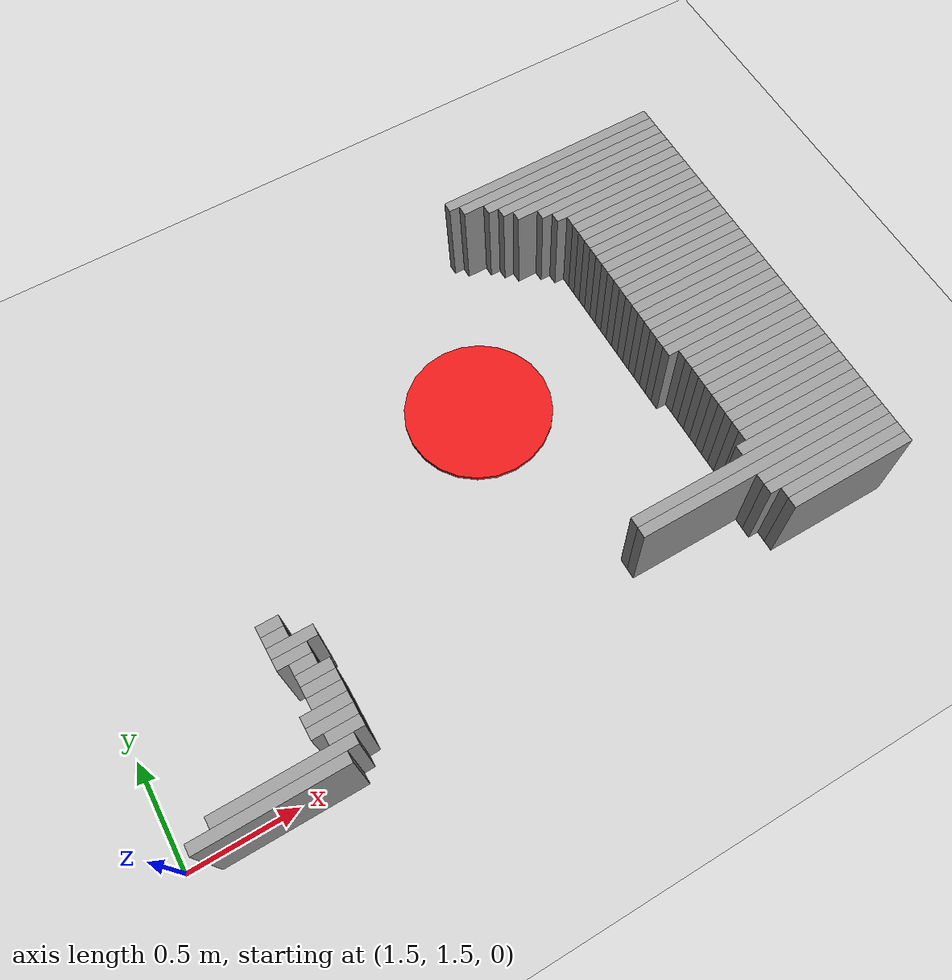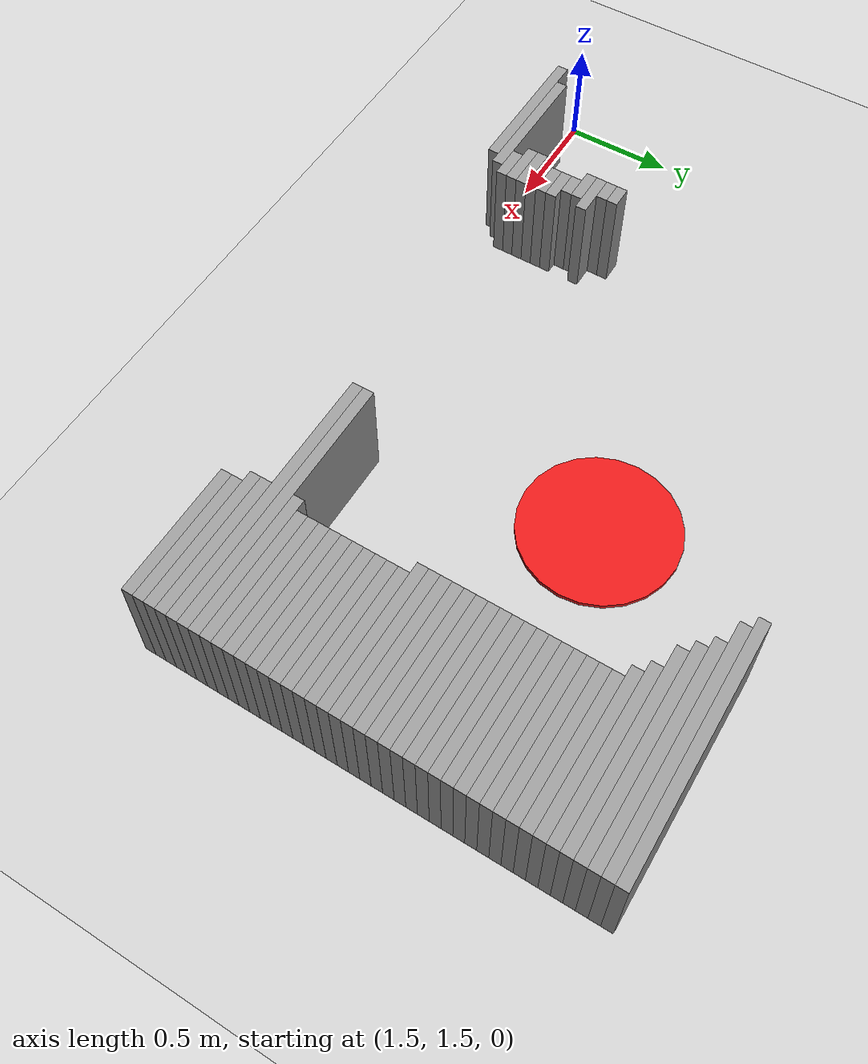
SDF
<sdf version="1.6">
 <world name="lab_world">
  <model name="ground_plane">
   <static>true</static>
   <link name="link">
    <collision name="collision">
     <geometry><plane><normal>0 0 1</normal><size>100 100</size></plane></geometry>
    </collision>
    <visual name="visual">
     <geometry><plane><normal>0 0 1</normal><size>100 100</size></plane></geometry>
     <material><ambient>0.8 0.8 0.8 1</ambient><diffuse>0.8 0.8 0.8 1</diffuse></material>
    </visual>
   </link>
  </model>
  <model name="wall_15">
   <static>true</static>
   <pose>4.3340 3.4660 0.2500 0 0 0</pose>
   <link name="link">
    <collision name="col"><geometry><box><size>1.1000 0.0500 0.5000</size></box></geometry></collision>
    <visual name="vis">
     <geometry><box><size>1.1000 0.0500 0.5000</size></box></geometry>
     <material><ambient>0.4 0.4 0.4 1</ambient><diffuse>0.6 0.6 0.6 1</diffuse></material>
    </visual>
   </link>
  </model>
  <model name="wall_18">
   <static>true</static>
   <pose>4.3590 3.4160 0.2500 0 0 0</pose>
   <link name="link">
    <collision name="col"><geometry><box><size>1.0500 0.0500 0.5000</size></box></geometry></collision>
    <visual name="vis">
     <geometry><box><size>1.0500 0.0500 0.5000</size></box></geometry>
     <material><ambient>0.4 0.4 0.4 1</ambient><diffuse>0.6 0.6 0.6 1</diffuse></material>
    </visual>
   </link>
  </model>
  <model name="wall_22">
   <static>true</static>
   <pose>4.4090 3.3660 0.2500 0 0 0</pose>
   <link name="link">
    <collision name="col"><geometry><box><size>0.9500 0.0500 0.5000</size></box></geometry></collision>
    <visual name="vis">
     <geometry><box><size>0.9500 0.0500 0.5000</size></box></geometry>
     <material><ambient>0.4 0.4 0.4 1</ambient><diffuse>0.6 0.6 0.6 1</diffuse></material>
    </visual>
   </link>
  </model>
  <model name="wall_25">
   <static>true</static>
   <pose>4.4340 3.3160 0.2500 0 0 0</pose>
   <link name="link">
    <collision name="col"><geometry><box><size>0.9000 0.0500 0.5000</size></box></geometry></collision>
    <visual name="vis">
     <geometry><box><size>0.9000 0.0500 0.5000</size></box></geometry>
     <material><ambient>0.4 0.4 0.4 1</ambient><diffuse>0.6 0.6 0.6 1</diffuse></material>
    </visual>
   </link>
  </model>
  <model name="wall_28">
   <static>true</static>
   <pose>4.4590 3.2660 0.2500 0 0 0</pose>
   <link name="link">
    <collision name="col"><geometry><box><size>0.8500 0.0500 0.5000</size></box></geometry></collision>
    <visual name="vis">
     <geometry><box><size>0.8500 0.0500 0.5000</size></box></geometry>
     <material><ambient>0.4 0.4 0.4 1</ambient><diffuse>0.6 0.6 0.6 1</diffuse></material>
    </visual>
   </link>
  </model>
  <model name="wall_31">
   <static>true</static>
   <pose>4.5090 3.2160 0.2500 0 0 0</pose>
   <link name="link">
    <collision name="col"><geometry><box><size>0.7500 0.0500 0.5000</size></box></geometry></collision>
    <visual name="vis">
     <geometry><box><size>0.7500 0.0500 0.5000</size></box></geometry>
     <material><ambient>0.4 0.4 0.4 1</ambient><diffuse>0.6 0.6 0.6 1</diffuse></material>
    </visual>
   </link>
  </model>
  <model name="wall_34">
   <static>true</static>
   <pose>4.5340 3.1660 0.2500 0 0 0</pose>
   <link name="link">
    <collision name="col"><geometry><box><size>0.7000 0.0500 0.5000</size></box></geometry></collision>
    <visual name="vis">
     <geometry><box><size>0.7000 0.0500 0.5000</size></box></geometry>
     <material><ambient>0.4 0.4 0.4 1</ambient><diffuse>0.6 0.6 0.6 1</diffuse></material>
    </visual>
   </link>
  </model>
  <model name="wall_37">
   <static>true</static>
   <pose>4.5590 3.1160 0.2500 0 0 0</pose>
   <link name="link">
    <collision name="col"><geometry><box><size>0.6500 0.0500 0.5000</size></box></geometry></collision>
    <visual name="vis">
     <geometry><box><size>0.6500 0.0500 0.5000</size></box></geometry>
     <material><ambient>0.4 0.4 0.4 1</ambient><diffuse>0.6 0.6 0.6 1</diffuse></material>
    </visual>
   </link>
  </model>
  <model name="wall_40">
   <static>true</static>
   <pose>4.5590 3.0660 0.2500 0 0 0</pose>
   <link name="link">
    <collision name="col"><geometry><box><size>0.6500 0.0500 0.5000</size></box></geometry></collision>
    <visual name="vis">
     <geometry><box><size>0.6500 0.0500 0.5000</size></box></geometry>
     <material><ambient>0.4 0.4 0.4 1</ambient><diffuse>0.6 0.6 0.6 1</diffuse></material>
    </visual>
   </link>
  </model>
  <model name="wall_43">
   <static>true</static>
   <pose>4.5590 3.0160 0.2500 0 0 0</pose>
   <link name="link">
    <collision name="col"><geometry><box><size>0.6500 0.0500 0.5000</size></box></geometry></collision>
    <visual name="vis">
     <geometry><box><size>0.6500 0.0500 0.5000</size></box></geometry>
     <material><ambient>0.4 0.4 0.4 1</ambient><diffuse>0.6 0.6 0.6 1</diffuse></material>
    </visual>
   </link>
  </model>
  <model name="wall_46">
   <static>true</static>
   <pose>4.5590 2.9660 0.2500 0 0 0</pose>
   <link name="link">
    <collision name="col"><geometry><box><size>0.6500 0.0500 0.5000</size></box></geometry></collision>
    <visual name="vis">
     <geometry><box><size>0.6500 0.0500 0.5000</size></box></geometry>
     <material><ambient>0.4 0.4 0.4 1</ambient><diffuse>0.6 0.6 0.6 1</diffuse></material>
    </visual>
   </link>
  </model>
  <model name="wall_49">
   <static>true</static>
   <pose>4.5590 2.9160 0.2500 0 0 0</pose>
   <link name="link">
    <collision name="col"><geometry><box><size>0.6500 0.0500 0.5000</size></box></geometry></collision>
    <visual name="vis">
     <geometry><box><size>0.6500 0.0500 0.5000</size></box></geometry>
     <material><ambient>0.4 0.4 0.4 1</ambient><diffuse>0.6 0.6 0.6 1</diffuse></material>
    </visual>
   </link>
  </model>
  <model name="wall_52">
   <static>true</static>
   <pose>4.5590 2.8660 0.2500 0 0 0</pose>
   <link name="link">
    <collision name="col"><geometry><box><size>0.6500 0.0500 0.5000</size></box></geometry></collision>
    <visual name="vis">
     <geometry><box><size>0.6500 0.0500 0.5000</size></box></geometry>
     <material><ambient>0.4 0.4 0.4 1</ambient><diffuse>0.6 0.6 0.6 1</diffuse></material>
    </visual>
   </link>
  </model>
  <model name="wall_54">
   <static>true</static>
   <pose>4.5590 2.8160 0.2500 0 0 0</pose>
   <link name="link">
    <collision name="col"><geometry><box><size>0.6500 0.0500 0.5000</size></box></geometry></collision>
    <visual name="vis">
     <geometry><box><size>0.6500 0.0500 0.5000</size></box></geometry>
     <material><ambient>0.4 0.4 0.4 1</ambient><diffuse>0.6 0.6 0.6 1</diffuse></material>
    </visual>
   </link>
  </model>
  <model name="wall_56">
   <static>true</static>
   <pose>4.5590 2.7660 0.2500 0 0 0</pose>
   <link name="link">
    <collision name="col"><geometry><box><size>0.6500 0.0500 0.5000</size></box></geometry></collision>
    <visual name="vis">
     <geometry><box><size>0.6500 0.0500 0.5000</size></box></geometry>
     <material><ambient>0.4 0.4 0.4 1</ambient><diffuse>0.6 0.6 0.6 1</diffuse></material>
    </visual>
   </link>
  </model>
  <model name="wall_58">
   <static>true</static>
   <pose>4.5590 2.7160 0.2500 0 0 0</pose>
   <link name="link">
    <collision name="col"><geometry><box><size>0.6500 0.0500 0.5000</size></box></geometry></collision>
    <visual name="vis">
     <geometry><box><size>0.6500 0.0500 0.5000</size></box></geometry>
     <material><ambient>0.4 0.4 0.4 1</ambient><diffuse>0.6 0.6 0.6 1</diffuse></material>
    </visual>
   </link>
  </model>
  <model name="wall_60">
   <static>true</static>
   <pose>4.5590 2.6660 0.2500 0 0 0</pose>
   <link name="link">
    <collision name="col"><geometry><box><size>0.6500 0.0500 0.5000</size></box></geometry></collision>
    <visual name="vis">
     <geometry><box><size>0.6500 0.0500 0.5000</size></box></geometry>
     <material><ambient>0.4 0.4 0.4 1</ambient><diffuse>0.6 0.6 0.6 1</diffuse></material>
    </visual>
   </link>
  </model>
  <model name="wall_62">
   <static>true</static>
   <pose>4.5590 2.6160 0.2500 0 0 0</pose>
   <link name="link">
    <collision name="col"><geometry><box><size>0.6500 0.0500 0.5000</size></box></geometry></collision>
    <visual name="vis">
     <geometry><box><size>0.6500 0.0500 0.5000</size></box></geometry>
     <material><ambient>0.4 0.4 0.4 1</ambient><diffuse>0.6 0.6 0.6 1</diffuse></material>
    </visual>
   </link>
  </model>
  <model name="wall_64">
   <static>true</static>
   <pose>4.5590 2.5660 0.2500 0 0 0</pose>
   <link name="link">
    <collision name="col"><geometry><box><size>0.6500 0.0500 0.5000</size></box></geometry></collision>
    <visual name="vis">
     <geometry><box><size>0.6500 0.0500 0.5000</size></box></geometry>
     <material><ambient>0.4 0.4 0.4 1</ambient><diffuse>0.6 0.6 0.6 1</diffuse></material>
    </visual>
   </link>
  </model>
  <model name="wall_66">
   <static>true</static>
   <pose>4.5590 2.5160 0.2500 0 0 0</pose>
   <link name="link">
    <collision name="col"><geometry><box><size>0.6500 0.0500 0.5000</size></box></geometry></collision>
    <visual name="vis">
     <geometry><box><size>0.6500 0.0500 0.5000</size></box></geometry>
     <material><ambient>0.4 0.4 0.4 1</ambient><diffuse>0.6 0.6 0.6 1</diffuse></material>
    </visual>
   </link>
  </model>
  <model name="wall_68">
   <static>true</static>
   <pose>4.5590 2.4660 0.2500 0 0 0</pose>
   <link name="link">
    <collision name="col"><geometry><box><size>0.6500 0.0500 0.5000</size></box></geometry></collision>
    <visual name="vis">
     <geometry><box><size>0.6500 0.0500 0.5000</size></box></geometry>
     <material><ambient>0.4 0.4 0.4 1</ambient><diffuse>0.6 0.6 0.6 1</diffuse></material>
    </visual>
   </link>
  </model>
  <model name="wall_70">
   <static>true</static>
   <pose>4.5590 2.4160 0.2500 0 0 0</pose>
   <link name="link">
    <collision name="col"><geometry><box><size>0.6500 0.0500 0.5000</size></box></geometry></collision>
    <visual name="vis">
     <geometry><box><size>0.6500 0.0500 0.5000</size></box></geometry>
     <material><ambient>0.4 0.4 0.4 1</ambient><diffuse>0.6 0.6 0.6 1</diffuse></material>
    </visual>
   </link>
  </model>
  <model name="wall_72">
   <static>true</static>
   <pose>4.5590 2.3660 0.2500 0 0 0</pose>
   <link name="link">
    <collision name="col"><geometry><box><size>0.6500 0.0500 0.5000</size></box></geometry></collision>
    <visual name="vis">
     <geometry><box><size>0.6500 0.0500 0.5000</size></box></geometry>
     <material><ambient>0.4 0.4 0.4 1</ambient><diffuse>0.6 0.6 0.6 1</diffuse></material>
    </visual>
   </link>
  </model>
  <model name="wall_74">
   <static>true</static>
   <pose>4.5590 2.3160 0.2500 0 0 0</pose>
   <link name="link">
    <collision name="col"><geometry><box><size>0.6500 0.0500 0.5000</size></box></geometry></collision>
    <visual name="vis">
     <geometry><box><size>0.6500 0.0500 0.5000</size></box></geometry>
     <material><ambient>0.4 0.4 0.4 1</ambient><diffuse>0.6 0.6 0.6 1</diffuse></material>
    </visual>
   </link>
  </model>
  <model name="wall_76">
   <static>true</static>
   <pose>4.5840 2.2660 0.2500 0 0 0</pose>
   <link name="link">
    <collision name="col"><geometry><box><size>0.6000 0.0500 0.5000</size></box></geometry></collision>
    <visual name="vis">
     <geometry><box><size>0.6000 0.0500 0.5000</size></box></geometry>
     <material><ambient>0.4 0.4 0.4 1</ambient><diffuse>0.6 0.6 0.6 1</diffuse></material>
    </visual>
   </link>
  </model>
  <model name="wall_78">
   <static>true</static>
   <pose>4.5840 2.2160 0.2500 0 0 0</pose>
   <link name="link">
    <collision name="col"><geometry><box><size>0.6000 0.0500 0.5000</size></box></geometry></collision>
    <visual name="vis">
     <geometry><box><size>0.6000 0.0500 0.5000</size></box></geometry>
     <material><ambient>0.4 0.4 0.4 1</ambient><diffuse>0.6 0.6 0.6 1</diffuse></material>
    </visual>
   </link>
  </model>
  <model name="wall_80">
   <static>true</static>
   <pose>4.5840 2.1660 0.2500 0 0 0</pose>
   <link name="link">
    <collision name="col"><geometry><box><size>0.6000 0.0500 0.5000</size></box></geometry></collision>
    <visual name="vis">
     <geometry><box><size>0.6000 0.0500 0.5000</size></box></geometry>
     <material><ambient>0.4 0.4 0.4 1</ambient><diffuse>0.6 0.6 0.6 1</diffuse></material>
    </visual>
   </link>
  </model>
  <model name="wall_82">
   <static>true</static>
   <pose>4.5840 2.1160 0.2500 0 0 0</pose>
   <link name="link">
    <collision name="col"><geometry><box><size>0.6000 0.0500 0.5000</size></box></geometry></collision>
    <visual name="vis">
     <geometry><box><size>0.6000 0.0500 0.5000</size></box></geometry>
     <material><ambient>0.4 0.4 0.4 1</ambient><diffuse>0.6 0.6 0.6 1</diffuse></material>
    </visual>
   </link>
  </model>
  <model name="wall_84">
   <static>true</static>
   <pose>2.2340 2.0660 0.2500 0 0 0</pose>
   <link name="link">
    <collision name="col"><geometry><box><size>0.1000 0.0500 0.5000</size></box></geometry></collision>
    <visual name="vis">
     <geometry><box><size>0.1000 0.0500 0.5000</size></box></geometry>
     <material><ambient>0.4 0.4 0.4 1</ambient><diffuse>0.6 0.6 0.6 1</diffuse></material>
    </visual>
   </link>
  </model>
  <model name="wall_85">
   <static>true</static>
   <pose>4.5840 2.0660 0.2500 0 0 0</pose>
   <link name="link">
    <collision name="col"><geometry><box><size>0.6000 0.0500 0.5000</size></box></geometry></collision>
    <visual name="vis">
     <geometry><box><size>0.6000 0.0500 0.5000</size></box></geometry>
     <material><ambient>0.4 0.4 0.4 1</ambient><diffuse>0.6 0.6 0.6 1</diffuse></material>
    </visual>
   </link>
  </model>
  <model name="wall_87">
   <static>true</static>
   <pose>2.2340 2.0160 0.2500 0 0 0</pose>
   <link name="link">
    <collision name="col"><geometry><box><size>0.1000 0.0500 0.5000</size></box></geometry></collision>
    <visual name="vis">
     <geometry><box><size>0.1000 0.0500 0.5000</size></box></geometry>
     <material><ambient>0.4 0.4 0.4 1</ambient><diffuse>0.6 0.6 0.6 1</diffuse></material>
    </visual>
   </link>
  </model>
  <model name="wall_88">
   <static>true</static>
   <pose>4.5840 2.0160 0.2500 0 0 0</pose>
   <link name="link">
    <collision name="col"><geometry><box><size>0.6000 0.0500 0.5000</size></box></geometry></collision>
    <visual name="vis">
     <geometry><box><size>0.6000 0.0500 0.5000</size></box></geometry>
     <material><ambient>0.4 0.4 0.4 1</ambient><diffuse>0.6 0.6 0.6 1</diffuse></material>
    </visual>
   </link>
  </model>
  <model name="wall_90">
   <static>true</static>
   <pose>2.2840 1.9660 0.2500 0 0 0</pose>
   <link name="link">
    <collision name="col"><geometry><box><size>0.2000 0.0500 0.5000</size></box></geometry></collision>
    <visual name="vis">
     <geometry><box><size>0.2000 0.0500 0.5000</size></box></geometry>
     <material><ambient>0.4 0.4 0.4 1</ambient><diffuse>0.6 0.6 0.6 1</diffuse></material>
    </visual>
   </link>
  </model>
  <model name="wall_91">
   <static>true</static>
   <pose>4.5840 1.9660 0.2500 0 0 0</pose>
   <link name="link">
    <collision name="col"><geometry><box><size>0.6000 0.0500 0.5000</size></box></geometry></collision>
    <visual name="vis">
     <geometry><box><size>0.6000 0.0500 0.5000</size></box></geometry>
     <material><ambient>0.4 0.4 0.4 1</ambient><diffuse>0.6 0.6 0.6 1</diffuse></material>
    </visual>
   </link>
  </model>
  <model name="wall_93">
   <static>true</static>
   <pose>2.2590 1.9160 0.2500 0 0 0</pose>
   <link name="link">
    <collision name="col"><geometry><box><size>0.1500 0.0500 0.5000</size></box></geometry></collision>
    <visual name="vis">
     <geometry><box><size>0.1500 0.0500 0.5000</size></box></geometry>
     <material><ambient>0.4 0.4 0.4 1</ambient><diffuse>0.6 0.6 0.6 1</diffuse></material>
    </visual>
   </link>
  </model>
  <model name="wall_94">
   <static>true</static>
   <pose>4.5840 1.9160 0.2500 0 0 0</pose>
   <link name="link">
    <collision name="col"><geometry><box><size>0.6000 0.0500 0.5000</size></box></geometry></collision>
    <visual name="vis">
     <geometry><box><size>0.6000 0.0500 0.5000</size></box></geometry>
     <material><ambient>0.4 0.4 0.4 1</ambient><diffuse>0.6 0.6 0.6 1</diffuse></material>
    </visual>
   </link>
  </model>
  <model name="wall_96">
   <static>true</static>
   <pose>2.2840 1.8660 0.2500 0 0 0</pose>
   <link name="link">
    <collision name="col"><geometry><box><size>0.1000 0.0500 0.5000</size></box></geometry></collision>
    <visual name="vis">
     <geometry><box><size>0.1000 0.0500 0.5000</size></box></geometry>
     <material><ambient>0.4 0.4 0.4 1</ambient><diffuse>0.6 0.6 0.6 1</diffuse></material>
    </visual>
   </link>
  </model>
  <model name="wall_97">
   <static>true</static>
   <pose>4.5840 1.8660 0.2500 0 0 0</pose>
   <link name="link">
    <collision name="col"><geometry><box><size>0.6000 0.0500 0.5000</size></box></geometry></collision>
    <visual name="vis">
     <geometry><box><size>0.6000 0.0500 0.5000</size></box></geometry>
     <material><ambient>0.4 0.4 0.4 1</ambient><diffuse>0.6 0.6 0.6 1</diffuse></material>
    </visual>
   </link>
  </model>
  <model name="wall_99">
   <static>true</static>
   <pose>2.3090 1.8160 0.2500 0 0 0</pose>
   <link name="link">
    <collision name="col"><geometry><box><size>0.1500 0.0500 0.5000</size></box></geometry></collision>
    <visual name="vis">
     <geometry><box><size>0.1500 0.0500 0.5000</size></box></geometry>
     <material><ambient>0.4 0.4 0.4 1</ambient><diffuse>0.6 0.6 0.6 1</diffuse></material>
    </visual>
   </link>
  </model>
  <model name="wall_100">
   <static>true</static>
   <pose>4.5840 1.8160 0.2500 0 0 0</pose>
   <link name="link">
    <collision name="col"><geometry><box><size>0.6000 0.0500 0.5000</size></box></geometry></collision>
    <visual name="vis">
     <geometry><box><size>0.6000 0.0500 0.5000</size></box></geometry>
     <material><ambient>0.4 0.4 0.4 1</ambient><diffuse>0.6 0.6 0.6 1</diffuse></material>
    </visual>
   </link>
  </model>
  <model name="wall_102">
   <static>true</static>
   <pose>2.3090 1.7660 0.2500 0 0 0</pose>
   <link name="link">
    <collision name="col"><geometry><box><size>0.1500 0.0500 0.5000</size></box></geometry></collision>
    <visual name="vis">
     <geometry><box><size>0.1500 0.0500 0.5000</size></box></geometry>
     <material><ambient>0.4 0.4 0.4 1</ambient><diffuse>0.6 0.6 0.6 1</diffuse></material>
    </visual>
   </link>
  </model>
  <model name="wall_103">
   <static>true</static>
   <pose>4.5590 1.7660 0.2500 0 0 0</pose>
   <link name="link">
    <collision name="col"><geometry><box><size>0.6500 0.0500 0.5000</size></box></geometry></collision>
    <visual name="vis">
     <geometry><box><size>0.6500 0.0500 0.5000</size></box></geometry>
     <material><ambient>0.4 0.4 0.4 1</ambient><diffuse>0.6 0.6 0.6 1</diffuse></material>
    </visual>
   </link>
  </model>
  <model name="wall_105">
   <static>true</static>
   <pose>2.3090 1.7160 0.2500 0 0 0</pose>
   <link name="link">
    <collision name="col"><geometry><box><size>0.1500 0.0500 0.5000</size></box></geometry></collision>
    <visual name="vis">
     <geometry><box><size>0.1500 0.0500 0.5000</size></box></geometry>
     <material><ambient>0.4 0.4 0.4 1</ambient><diffuse>0.6 0.6 0.6 1</diffuse></material>
    </visual>
   </link>
  </model>
  <model name="wall_106">
   <static>true</static>
   <pose>4.2840 1.7160 0.2500 0 0 0</pose>
   <link name="link">
    <collision name="col"><geometry><box><size>1.2000 0.0500 0.5000</size></box></geometry></collision>
    <visual name="vis">
     <geometry><box><size>1.2000 0.0500 0.5000</size></box></geometry>
     <material><ambient>0.4 0.4 0.4 1</ambient><diffuse>0.6 0.6 0.6 1</diffuse></material>
    </visual>
   </link>
  </model>
  <model name="wall_108">
   <static>true</static>
   <pose>2.2840 1.6660 0.2500 0 0 0</pose>
   <link name="link">
    <collision name="col"><geometry><box><size>0.2000 0.0500 0.5000</size></box></geometry></collision>
    <visual name="vis">
     <geometry><box><size>0.2000 0.0500 0.5000</size></box></geometry>
     <material><ambient>0.4 0.4 0.4 1</ambient><diffuse>0.6 0.6 0.6 1</diffuse></material>
    </visual>
   </link>
  </model>
  <model name="wall_109">
   <static>true</static>
   <pose>4.2840 1.6660 0.2500 0 0 0</pose>
   <link name="link">
    <collision name="col"><geometry><box><size>1.2000 0.0500 0.5000</size></box></geometry></collision>
    <visual name="vis">
     <geometry><box><size>1.2000 0.0500 0.5000</size></box></geometry>
     <material><ambient>0.4 0.4 0.4 1</ambient><diffuse>0.6 0.6 0.6 1</diffuse></material>
    </visual>
   </link>
  </model>
  <model name="wall_111">
   <static>true</static>
   <pose>2.2840 1.6160 0.2500 0 0 0</pose>
   <link name="link">
    <collision name="col"><geometry><box><size>0.2000 0.0500 0.5000</size></box></geometry></collision>
    <visual name="vis">
     <geometry><box><size>0.2000 0.0500 0.5000</size></box></geometry>
     <material><ambient>0.4 0.4 0.4 1</ambient><diffuse>0.6 0.6 0.6 1</diffuse></material>
    </visual>
   </link>
  </model>
  <model name="wall_112">
   <static>true</static>
   <pose>4.5590 1.6160 0.2500 0 0 0</pose>
   <link name="link">
    <collision name="col"><geometry><box><size>0.6500 0.0500 0.5000</size></box></geometry></collision>
    <visual name="vis">
     <geometry><box><size>0.6500 0.0500 0.5000</size></box></geometry>
     <material><ambient>0.4 0.4 0.4 1</ambient><diffuse>0.6 0.6 0.6 1</diffuse></material>
    </visual>
   </link>
  </model>
  <model name="wall_114">
   <static>true</static>
   <pose>2.3090 1.5660 0.2500 0 0 0</pose>
   <link name="link">
    <collision name="col"><geometry><box><size>0.1500 0.0500 0.5000</size></box></geometry></collision>
    <visual name="vis">
     <geometry><box><size>0.1500 0.0500 0.5000</size></box></geometry>
     <material><ambient>0.4 0.4 0.4 1</ambient><diffuse>0.6 0.6 0.6 1</diffuse></material>
    </visual>
   </link>
  </model>
  <model name="wall_115">
   <static>true</static>
   <pose>4.5590 1.5660 0.2500 0 0 0</pose>
   <link name="link">
    <collision name="col"><geometry><box><size>0.6500 0.0500 0.5000</size></box></geometry></collision>
    <visual name="vis">
     <geometry><box><size>0.6500 0.0500 0.5000</size></box></geometry>
     <material><ambient>0.4 0.4 0.4 1</ambient><diffuse>0.6 0.6 0.6 1</diffuse></material>
    </visual>
   </link>
  </model>
  <model name="wall_117">
   <static>true</static>
   <pose>2.0340 1.5160 0.2500 0 0 0</pose>
   <link name="link">
    <collision name="col"><geometry><box><size>0.6000 0.0500 0.5000</size></box></geometry></collision>
    <visual name="vis">
     <geometry><box><size>0.6000 0.0500 0.5000</size></box></geometry>
     <material><ambient>0.4 0.4 0.4 1</ambient><diffuse>0.6 0.6 0.6 1</diffuse></material>
    </visual>
   </link>
  </model>
  <model name="wall_118">
   <static>true</static>
   <pose>4.5840 1.5160 0.2500 0 0 0</pose>
   <link name="link">
    <collision name="col"><geometry><box><size>0.6000 0.0500 0.5000</size></box></geometry></collision>
    <visual name="vis">
     <geometry><box><size>0.6000 0.0500 0.5000</size></box></geometry>
     <material><ambient>0.4 0.4 0.4 1</ambient><diffuse>0.6 0.6 0.6 1</diffuse></material>
    </visual>
   </link>
  </model>
  <model name="wall_120">
   <static>true</static>
   <pose>1.9590 1.4660 0.2500 0 0 0</pose>
   <link name="link">
    <collision name="col"><geometry><box><size>0.6500 0.0500 0.5000</size></box></geometry></collision>
    <visual name="vis">
     <geometry><box><size>0.6500 0.0500 0.5000</size></box></geometry>
     <material><ambient>0.4 0.4 0.4 1</ambient><diffuse>0.6 0.6 0.6 1</diffuse></material>
    </visual>
   </link>
  </model>
  <model name="wall_121">
   <static>true</static>
   <pose>4.5840 1.4660 0.2500 0 0 0</pose>
   <link name="link">
    <collision name="col"><geometry><box><size>0.6000 0.0500 0.5000</size></box></geometry></collision>
    <visual name="vis">
     <geometry><box><size>0.6000 0.0500 0.5000</size></box></geometry>
     <material><ambient>0.4 0.4 0.4 1</ambient><diffuse>0.6 0.6 0.6 1</diffuse></material>
    </visual>
   </link>
  </model>
  <model name="spray_zone_C">
   <static>true</static>
   <pose>3.5 2.7 0.015 0 0 0</pose>
   <link name="link">
    <visual name="vis">
     <geometry><cylinder><radius>0.35</radius><length>0.02</length></cylinder></geometry>
     <material><ambient>0.9 0.1 0.1 1</ambient><diffuse>0.9 0.1 0.1 1</diffuse></material>
    </visual>
   </link>
  </model>
 </world>
</sdf>
